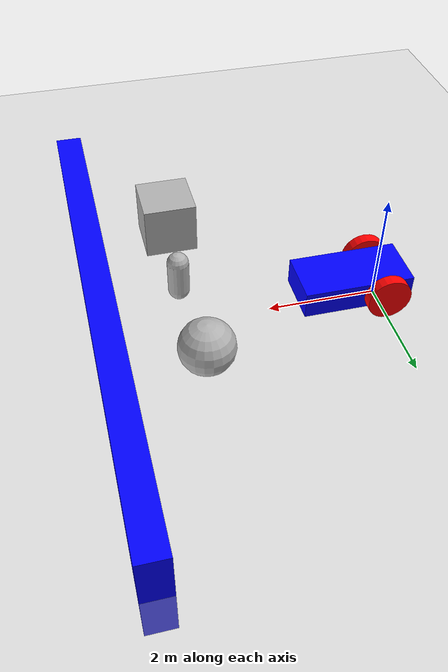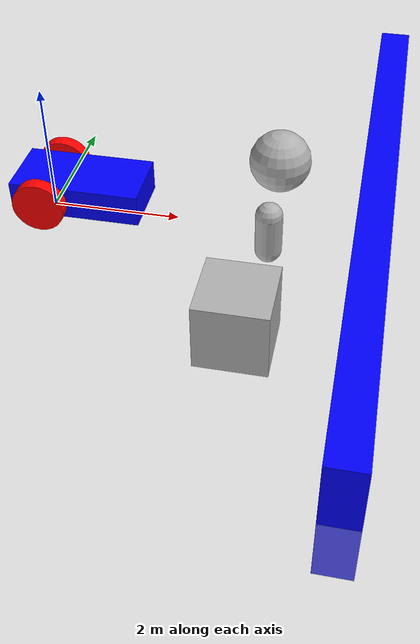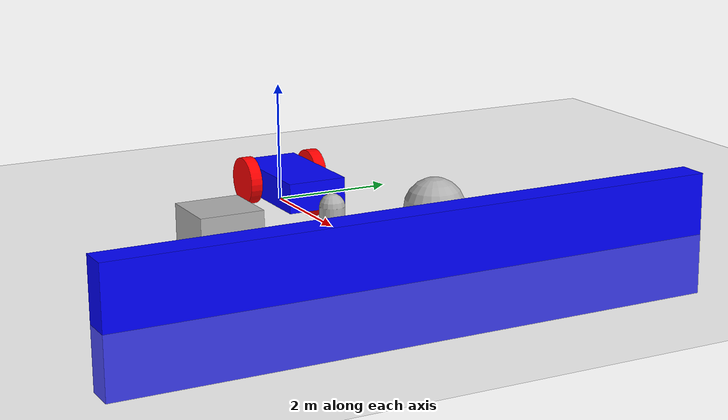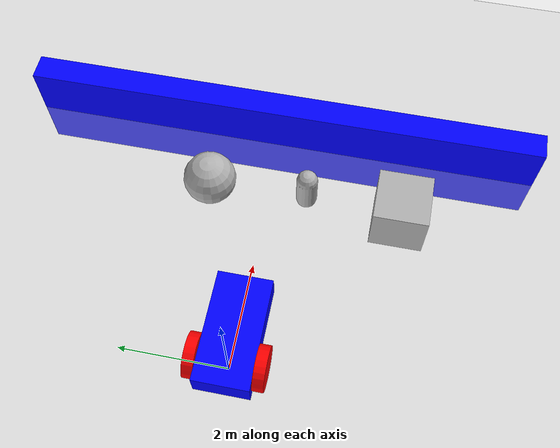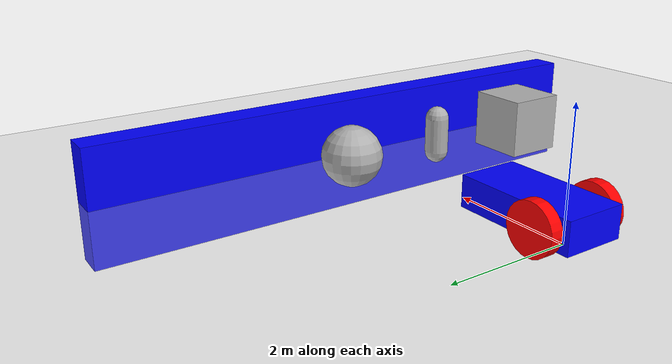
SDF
<sdf version='1.9'>
  <world name='car_world'>
    <physics name='1ms' type='ignored'>
      <max_step_size>0.001</max_step_size>
      <real_time_factor>1</real_time_factor>
      <real_time_update_rate>1000</real_time_update_rate>
    </physics>
    <plugin name='ignition::gazebo::systems::Physics' filename='libignition-gazebo-physics-system.so'/>
    <plugin name='ignition::gazebo::systems::Imu' filename='libignition-gazebo-imu-system.so'/>
    <plugin name='ignition::gazebo::systems::UserCommands' filename='libignition-gazebo-user-commands-system.so'/>
    <plugin name='ignition::gazebo::systems::SceneBroadcaster' filename='libignition-gazebo-scene-broadcaster-system.so'/>
    <plugin name='ignition::gazebo::systems::Sensors' filename='libignition-gazebo-sensors-system.so'>
      <render_engine>ogre2</render_engine>
    </plugin>
    <plugin name='ignition::gazebo::systems::TriggeredPublisher' filename='libignition-gazebo-triggered-publisher-system.so'>
      <input type='ignition.msgs.Int32' topic='/keyboard/keypress'>
        <match field='data'>16777235</match>
      </input>
      <output type='ignition.msgs.Twist' topic='/cmd_vel'>linear: {x: 0.5}, angular: {z: 0.0}</output>
    </plugin>
    <plugin name='ignition::gazebo::systems::TriggeredPublisher' filename='libignition-gazebo-triggered-publisher-system.so'>
      <input type='ignition.msgs.Int32' topic='/keyboard/keypress'>
        <match field='data'>16777237</match>
      </input>
      <output type='ignition.msgs.Twist' topic='/cmd_vel'>linear: {x: -0.5}, angular: {z: 0.0}</output>
    </plugin>
    <plugin name='ignition::gazebo::systems::TriggeredPublisher' filename='libignition-gazebo-triggered-publisher-system.so'>
      <input type='ignition.msgs.Int32' topic='/keyboard/keypress'>
        <match field='data'>16777234</match>
      </input>
      <output type='ignition.msgs.Twist' topic='/cmd_vel'>linear: {x: 0}, angular: {z: 0.5}</output>
    </plugin>
    <plugin name='ignition::gazebo::systems::TriggeredPublisher' filename='libignition-gazebo-triggered-publisher-system.so'>
      <input type='ignition.msgs.Int32' topic='/keyboard/keypress'>
        <match field='data'>16777236</match>
      </input>
      <output type='ignition.msgs.Twist' topic='/cmd_vel'>linear: {x: 0}, angular: {z: -0.5}</output>
    </plugin>
    <gravity>0 0 -9.8</gravity>
    <magnetic_field>6e-06 2.3e-05 -4.2e-05</magnetic_field>
    <atmosphere type='adiabatic'/>
    <scene>
      <ambient>0.4 0.4 0.4 1</ambient>
      <background>0.7 0.7 0.7 1</background>
      <shadows>true</shadows>
    </scene>
    <model name='ground_plane'>
      <static>true</static>
      <link name='link'>
        <collision name='collision'>
          <geometry>
            <plane>
              <normal>0 0 1</normal>
              <size>1 1</size>
            </plane>
          </geometry>
          <surface>
            <friction>
              <ode/>
            </friction>
            <bounce/>
            <contact/>
          </surface>
        </collision>
        <visual name='visual'>
          <geometry>
            <plane>
              <normal>0 0 1</normal>
              <size>100 100</size>
            </plane>
          </geometry>
          <material>
            <ambient>0.8 0.8 0.8 1</ambient>
            <diffuse>0.8 0.8 0.8 1</diffuse>
            <specular>0.8 0.8 0.8 1</specular>
          </material>
        </visual>
        <pose>0 0 0 0 -0 0</pose>
        <inertial>
          <pose>0 0 0 0 -0 0</pose>
          <mass>1</mass>
          <inertia>
            <ixx>1</ixx>
            <ixy>0</ixy>
            <ixz>0</ixz>
            <iyy>1</iyy>
            <iyz>0</iyz>
            <izz>1</izz>
          </inertia>
        </inertial>
        <enable_wind>false</enable_wind>
      </link>
      <pose>0 0 0 0 -0 0</pose>
      <self_collide>false</self_collide>
    </model>
    <model name='wall'>
      <static>true</static>
      <pose>5 0 0 0 -0 0</pose>
      <link name='box'>
        <pose>0 0 0 0 -0 0</pose>
        <visual name='visual'>
          <geometry>
            <box>
              <size>0.5 10 2</size>
            </box>
          </geometry>
          <material>
            <ambient>0 0 1 1</ambient>
            <diffuse>0 0 1 1</diffuse>
            <specular>0 0 1 1</specular>
          </material>
        </visual>
        <collision name='collision'>
          <geometry>
            <box>
              <size>0.5 10 2</size>
            </box>
          </geometry>
          <surface>
            <friction>
              <ode/>
            </friction>
            <bounce/>
            <contact/>
          </surface>
        </collision>
        <sensor name='sensor_contact' type='contact'>
          <contact>
            <collision>collision</collision>
            <topic>__default_topic__</topic>
          </contact>
        </sensor>
        <inertial>
          <pose>0 0 0 0 -0 0</pose>
          <mass>1</mass>
          <inertia>
            <ixx>1</ixx>
            <ixy>0</ixy>
            <ixz>0</ixz>
            <iyy>1</iyy>
            <iyz>0</iyz>
            <izz>1</izz>
          </inertia>
        </inertial>
        <enable_wind>false</enable_wind>
      </link>
      <self_collide>false</self_collide>
    </model>
    <model name='vehicle_blue' canonical_link='chassis'>
      <pose>0 0 0 0 -0 0</pose>
      <link name='chassis'>
        <pose>0.5 0 0.4 0 -0 0</pose>
        <inertial>
          <mass>1.14395</mass>
          <inertia>
            <ixx>0.095328999999999997</ixx>
            <ixy>0</ixy>
            <ixz>0</ixz>
            <iyy>0.38131700000000002</iyy>
            <iyz>0</iyz>
            <izz>0.47664600000000001</izz>
          </inertia>
          <pose>0 0 0 0 -0 0</pose>
        </inertial>
        <visual name='visual'>
          <geometry>
            <box>
              <size>2 1 0.5</size>
            </box>
          </geometry>
          <material>
            <ambient>0 0 1 1</ambient>
            <diffuse>0 0 1 1</diffuse>
            <specular>0 0 1 1</specular>
          </material>
        </visual>
        <collision name='collision'>
          <geometry>
            <box>
              <size>2 1 0.5</size>
            </box>
          </geometry>
          <surface>
            <friction>
              <ode/>
            </friction>
            <bounce/>
            <contact/>
          </surface>
        </collision>
        <sensor name='imu_sensor' type='imu'>
          <pose>0 0 0 0 -0 0</pose>
          <topic>imu</topic>
          <update_rate>1</update_rate>
          <enable_metrics>false</enable_metrics>
          <imu>
            <orientation_reference_frame>
              <localization>CUSTOM</localization>
              <custom_rpy>0 0 0</custom_rpy>
              <grav_dir_x>1 0 0</grav_dir_x>
            </orientation_reference_frame>
            <angular_velocity>
              <x>
                <noise type='none'>
                  <mean>0</mean>
                  <stddev>0</stddev>
                  <bias_mean>0</bias_mean>
                  <bias_stddev>0</bias_stddev>
                  <dynamic_bias_stddev>0</dynamic_bias_stddev>
                  <dynamic_bias_correlation_time>0</dynamic_bias_correlation_time>
                  <precision>0</precision>
                </noise>
              </x>
              <y>
                <noise type='none'>
                  <mean>0</mean>
                  <stddev>0</stddev>
                  <bias_mean>0</bias_mean>
                  <bias_stddev>0</bias_stddev>
                  <dynamic_bias_stddev>0</dynamic_bias_stddev>
                  <dynamic_bias_correlation_time>0</dynamic_bias_correlation_time>
                  <precision>0</precision>
                </noise>
              </y>
              <z>
                <noise type='none'>
                  <mean>0</mean>
                  <stddev>0</stddev>
                  <bias_mean>0</bias_mean>
                  <bias_stddev>0</bias_stddev>
                  <dynamic_bias_stddev>0</dynamic_bias_stddev>
                  <dynamic_bias_correlation_time>0</dynamic_bias_correlation_time>
                  <precision>0</precision>
                </noise>
              </z>
            </angular_velocity>
            <linear_acceleration>
              <x>
                <noise type='none'>
                  <mean>0</mean>
                  <stddev>0</stddev>
                  <bias_mean>0</bias_mean>
                  <bias_stddev>0</bias_stddev>
                  <dynamic_bias_stddev>0</dynamic_bias_stddev>
                  <dynamic_bias_correlation_time>0</dynamic_bias_correlation_time>
                  <precision>0</precision>
                </noise>
              </x>
              <y>
                <noise type='none'>
                  <mean>0</mean>
                  <stddev>0</stddev>
                  <bias_mean>0</bias_mean>
                  <bias_stddev>0</bias_stddev>
                  <dynamic_bias_stddev>0</dynamic_bias_stddev>
                  <dynamic_bias_correlation_time>0</dynamic_bias_correlation_time>
                  <precision>0</precision>
                </noise>
              </y>
              <z>
                <noise type='none'>
                  <mean>0</mean>
                  <stddev>0</stddev>
                  <bias_mean>0</bias_mean>
                  <bias_stddev>0</bias_stddev>
                  <dynamic_bias_stddev>0</dynamic_bias_stddev>
                  <dynamic_bias_correlation_time>0</dynamic_bias_correlation_time>
                  <precision>0</precision>
                </noise>
              </z>
            </linear_acceleration>
            <enable_orientation>true</enable_orientation>
          </imu>
        </sensor>
        <sensor name='gpu_lidar' type='gpu_lidar'>
          <pose>0 0 0 0 -0 0</pose>
          <topic>lidar</topic>
          <update_rate>10</update_rate>
          <enable_metrics>false</enable_metrics>
          <lidar>
            <scan>
              <horizontal>
                <samples>300</samples>
                <resolution>1</resolution>
                <min_angle>-1.5700000000000001</min_angle>
                <max_angle>1.5700000000000001</max_angle>
              </horizontal>
              <vertical>
                <samples>1</samples>
                <min_angle>0.10000000000000001</min_angle>
                <max_angle>0.10000000000000001</max_angle>
                <resolution>0.01</resolution>
              </vertical>
            </scan>
            <range>
              <min>0.080000000000000002</min>
              <max>30</max>
              <resolution>0.01</resolution>
            </range>
            <noise>
              <type>none</type>
              <mean>0</mean>
              <stddev>0</stddev>
            </noise>
            <visibility_mask>4294967295</visibility_mask>
          </lidar>
        </sensor>
        <sensor name='left_camera' type='camera'>
          <pose>0 0.5 0.5 0 -0 0</pose>
          <topic>camera_l</topic>
          <update_rate>30</update_rate>
          <enable_metrics>false</enable_metrics>
          <camera name='__default__'>
            <pose>0 0 0 0 -0 0</pose>
            <horizontal_fov>1.0469999999999999</horizontal_fov>
            <image>
              <width>1280</width>
              <height>720</height>
              <format>RGB_INT8</format>
              <anti_aliasing>4</anti_aliasing>
            </image>
            <camera_info_topic>__default__</camera_info_topic>
            <trigger_topic></trigger_topic>
            <triggered>false</triggered>
            <clip>
              <near>0.10000000000000001</near>
              <far>100</far>
            </clip>
            <save enabled='false'>
              <path>__default__</path>
            </save>
            <visibility_mask>4294967295</visibility_mask>
            <noise>
              <type>none</type>
              <mean>0</mean>
              <stddev>0</stddev>
            </noise>
            <distortion>
              <k1>0</k1>
              <k2>0</k2>
              <k3>0</k3>
              <p1>0</p1>
              <p2>0</p2>
              <center>0.5 0.5</center>
            </distortion>
            <lens>
              <type>stereographic</type>
              <scale_to_hfov>true</scale_to_hfov>
              <cutoff_angle>1.5708</cutoff_angle>
              <env_texture_size>256</env_texture_size>
            </lens>
            <optical_frame_id></optical_frame_id>
          </camera>
        </sensor>
        <sensor name='right_camera' type='camera'>
          <pose>0 -0.5 0.5 0 -0 0</pose>
          <topic>camera_r</topic>
          <update_rate>30</update_rate>
          <enable_metrics>false</enable_metrics>
          <camera name='__default__'>
            <pose>0 0 0 0 -0 0</pose>
            <horizontal_fov>1.0469999999999999</horizontal_fov>
            <image>
              <width>1280</width>
              <height>720</height>
              <format>RGB_INT8</format>
              <anti_aliasing>4</anti_aliasing>
            </image>
            <camera_info_topic>__default__</camera_info_topic>
            <trigger_topic></trigger_topic>
            <triggered>false</triggered>
            <clip>
              <near>0.10000000000000001</near>
              <far>100</far>
            </clip>
            <save enabled='false'>
              <path>__default__</path>
            </save>
            <visibility_mask>4294967295</visibility_mask>
            <noise>
              <type>none</type>
              <mean>0</mean>
              <stddev>0</stddev>
            </noise>
            <distortion>
              <k1>0</k1>
              <k2>0</k2>
              <k3>0</k3>
              <p1>0</p1>
              <p2>0</p2>
              <center>0.5 0.5</center>
            </distortion>
            <lens>
              <type>stereographic</type>
              <scale_to_hfov>true</scale_to_hfov>
              <cutoff_angle>1.5708</cutoff_angle>
              <env_texture_size>256</env_texture_size>
            </lens>
            <optical_frame_id></optical_frame_id>
          </camera>
        </sensor>
        <frame name='lidar_frame' attached_to='chassis'>
          <pose>0.8 0 0.5 0 0 0</pose>
        </frame>
        <frame name='camera_frame' attached_to='chassis'>
          <pose>2 0 1 0 0 0</pose>
        </frame>
        <enable_wind>false</enable_wind>
      </link>
      <link name='left_wheel'>
        <pose>0 0.6 0.4 -1.5707 0 0</pose>
        <inertial>
          <mass>1</mass>
          <inertia>
            <ixx>0.043333000000000003</ixx>
            <ixy>0</ixy>
            <ixz>0</ixz>
            <iyy>0.043333000000000003</iyy>
            <iyz>0</iyz>
            <izz>0.080000000000000002</izz>
          </inertia>
          <pose>0 0 0 0 -0 0</pose>
        </inertial>
        <visual name='visual'>
          <geometry>
            <cylinder>
              <radius>0.40000000000000002</radius>
              <length>0.20000000000000001</length>
            </cylinder>
          </geometry>
          <material>
            <ambient>1 0 0 1</ambient>
            <diffuse>1 0 0 1</diffuse>
            <specular>1 0 0 1</specular>
          </material>
        </visual>
        <collision name='collision'>
          <geometry>
            <cylinder>
              <radius>0.40000000000000002</radius>
              <length>0.20000000000000001</length>
            </cylinder>
          </geometry>
          <surface>
            <friction>
              <ode/>
            </friction>
            <bounce/>
            <contact/>
          </surface>
        </collision>
        <enable_wind>false</enable_wind>
      </link>
      <link name='right_wheel'>
        <pose>0 -0.6 0.4 -1.5707 0 0</pose>
        <inertial>
          <mass>1</mass>
          <inertia>
            <ixx>0.043333000000000003</ixx>
            <ixy>0</ixy>
            <ixz>0</ixz>
            <iyy>0.043333000000000003</iyy>
            <iyz>0</iyz>
            <izz>0.080000000000000002</izz>
          </inertia>
          <pose>0 0 0 0 -0 0</pose>
        </inertial>
        <visual name='visual'>
          <geometry>
            <cylinder>
              <radius>0.40000000000000002</radius>
              <length>0.20000000000000001</length>
            </cylinder>
          </geometry>
          <material>
            <ambient>1 0 0 1</ambient>
            <diffuse>1 0 0 1</diffuse>
            <specular>1 0 0 1</specular>
          </material>
        </visual>
        <collision name='collision'>
          <geometry>
            <cylinder>
              <radius>0.40000000000000002</radius>
              <length>0.20000000000000001</length>
            </cylinder>
          </geometry>
          <surface>
            <friction>
              <ode/>
            </friction>
            <bounce/>
            <contact/>
          </surface>
        </collision>
        <enable_wind>false</enable_wind>
      </link>
      <frame name='caster_frame' attached_to='chassis'>
        <pose>0.8 0 -0.2 0 0 0</pose>
      </frame>
      <link name='caster'>
        <pose>1.3 0 0.2 0 -0 0</pose>
        <inertial>
          <mass>1</mass>
          <inertia>
            <ixx>0.016</ixx>
            <ixy>0</ixy>
            <ixz>0</ixz>
            <iyy>0.016</iyy>
            <iyz>0</iyz>
            <izz>0.016</izz>
          </inertia>
          <pose>0 0 0 0 -0 0</pose>
        </inertial>
        <visual name='visual'>
          <geometry>
            <sphere>
              <radius>0.20000000000000001</radius>
            </sphere>
          </geometry>
          <material>
            <ambient>0.5 1 0.5 1</ambient>
            <diffuse>1 0 0 1</diffuse>
            <specular>1 1 0 1</specular>
          </material>
        </visual>
        <collision name='collision'>
          <geometry>
            <sphere>
              <radius>0.20000000000000001</radius>
            </sphere>
          </geometry>
          <surface>
            <friction>
              <ode/>
            </friction>
            <bounce/>
            <contact/>
          </surface>
        </collision>
        <enable_wind>false</enable_wind>
      </link>
      <joint name='left_wheel_joint' type='revolute'>
        <pose>0 0 0 0 -0 0</pose>
        <parent>chassis</parent>
        <child>left_wheel</child>
        <axis>
          <xyz>0 9.6e-05 1</xyz>
          <limit>
            <lower>-1.7976900000000001e+308</lower>
            <upper>1.7976900000000001e+308</upper>
            <effort>inf</effort>
            <velocity>inf</velocity>
            <stiffness>100000000</stiffness>
            <dissipation>1</dissipation>
          </limit>
          <dynamics>
            <spring_reference>0</spring_reference>
            <spring_stiffness>0</spring_stiffness>
            <damping>0</damping>
            <friction>0</friction>
          </dynamics>
        </axis>
      </joint>
      <joint name='right_wheel_joint' type='revolute'>
        <pose>0 0 0 0 -0 0</pose>
        <parent>chassis</parent>
        <child>right_wheel</child>
        <axis>
          <xyz>0 9.6e-05 1</xyz>
          <limit>
            <lower>-1.7976900000000001e+308</lower>
            <upper>1.7976900000000001e+308</upper>
            <effort>inf</effort>
            <velocity>inf</velocity>
            <stiffness>100000000</stiffness>
            <dissipation>1</dissipation>
          </limit>
          <dynamics>
            <spring_reference>0</spring_reference>
            <spring_stiffness>0</spring_stiffness>
            <damping>0</damping>
            <friction>0</friction>
          </dynamics>
        </axis>
      </joint>
      <joint name='caster_wheel' type='ball'>
        <parent>chassis</parent>
        <child>caster</child>
        <pose>0 0 0 0 -0 0</pose>
      </joint>
      <plugin name='ignition::gazebo::systems::DiffDrive' filename='libignition-gazebo-diff-drive-system.so'>
        <left_joint>left_wheel_joint</left_joint>
        <right_joint>right_wheel_joint</right_joint>
        <wheel_separation>1.2</wheel_separation>
        <wheel_radius>0.4</wheel_radius>
        <odom_publish_frequency>10</odom_publish_frequency>
        <topic>cmd_vel</topic>
      </plugin>
      <static>false</static>
      <self_collide>false</self_collide>
    </model>
    <model name='sphere'>
      <pose>3.42422 1.12861 0.5 0 -0 0</pose>
      <link name='sphere_link'>
        <inertial>
          <inertia>
            <ixx>0.10000000000000001</ixx>
            <ixy>0</ixy>
            <ixz>0</ixz>
            <iyy>0.10000000000000001</iyy>
            <iyz>0</iyz>
            <izz>0.10000000000000001</izz>
          </inertia>
          <mass>1</mass>
          <pose>0 0 0 0 -0 0</pose>
        </inertial>
        <collision name='sphere_collision'>
          <geometry>
            <sphere>
              <radius>0.5</radius>
            </sphere>
          </geometry>
          <surface>
            <friction>
              <ode/>
            </friction>
            <bounce/>
            <contact/>
          </surface>
        </collision>
        <visual name='sphere_visual'>
          <geometry>
            <sphere>
              <radius>0.5</radius>
            </sphere>
          </geometry>
          <material>
            <ambient>0.3 0.3 0.3 1</ambient>
            <diffuse>0.7 0.7 0.7 1</diffuse>
            <specular>1 1 1 1</specular>
          </material>
        </visual>
        <pose>0 0 0 0 -0 0</pose>
        <enable_wind>false</enable_wind>
      </link>
      <static>false</static>
      <self_collide>false</self_collide>
    </model>
    <model name='capsule'>
      <pose>3.52905 -0.721752 0.5 0 -0 0</pose>
      <link name='capsule_link'>
        <inertial>
          <inertia>
            <ixx>0.074153999999999998</ixx>
            <ixy>0</ixy>
            <ixz>0</ixz>
            <iyy>0.074153999999999998</iyy>
            <iyz>0</iyz>
            <izz>0.018769000000000001</izz>
          </inertia>
          <mass>1</mass>
          <pose>0 0 0 0 -0 0</pose>
        </inertial>
        <collision name='capsule_collision'>
          <geometry>
            <capsule>
              <radius>0.20000000000000001</radius>
              <length>0.59999999999999998</length>
            </capsule>
          </geometry>
          <surface>
            <friction>
              <ode/>
            </friction>
            <bounce/>
            <contact/>
          </surface>
        </collision>
        <visual name='capsule_visual'>
          <geometry>
            <capsule>
              <radius>0.20000000000000001</radius>
              <length>0.59999999999999998</length>
            </capsule>
          </geometry>
          <material>
            <ambient>0.3 0.3 0.3 1</ambient>
            <diffuse>0.7 0.7 0.7 1</diffuse>
            <specular>1 1 1 1</specular>
          </material>
        </visual>
        <pose>0 0 0 0 -0 0</pose>
        <enable_wind>false</enable_wind>
      </link>
      <static>false</static>
      <self_collide>false</self_collide>
    </model>
    <model name='box'>
      <pose>3.404 -2.5141 0.5 0 -0 0</pose>
      <link name='box_link'>
        <inertial>
          <inertia>
            <ixx>0.16666</ixx>
            <ixy>0</ixy>
            <ixz>0</ixz>
            <iyy>0.16666</iyy>
            <iyz>0</iyz>
            <izz>0.16666</izz>
          </inertia>
          <mass>1</mass>
          <pose>0 0 0 0 -0 0</pose>
        </inertial>
        <collision name='box_collision'>
          <geometry>
            <box>
              <size>1 1 1</size>
            </box>
          </geometry>
          <surface>
            <friction>
              <ode/>
            </friction>
            <bounce/>
            <contact/>
          </surface>
        </collision>
        <visual name='box_visual'>
          <geometry>
            <box>
              <size>1 1 1</size>
            </box>
          </geometry>
          <material>
            <ambient>0.3 0.3 0.3 1</ambient>
            <diffuse>0.7 0.7 0.7 1</diffuse>
            <specular>1 1 1 1</specular>
          </material>
        </visual>
        <pose>0 0 0 0 -0 0</pose>
        <enable_wind>false</enable_wind>
      </link>
      <static>false</static>
      <self_collide>false</self_collide>
    </model>
    <light name='sun' type='directional'>
      <pose>0 0 10 0 -0 0</pose>
      <cast_shadows>true</cast_shadows>
      <intensity>1</intensity>
      <direction>-0.5 0.1 -0.9</direction>
      <diffuse>0.8 0.8 0.8 1</diffuse>
      <specular>0.2 0.2 0.2 1</specular>
      <attenuation>
        <range>1000</range>
        <linear>0.01</linear>
        <constant>0.90000000000000002</constant>
        <quadratic>0.001</quadratic>
      </attenuation>
      <spot>
        <inner_angle>0</inner_angle>
        <outer_angle>0</outer_angle>
        <falloff>0</falloff>
      </spot>
    </light>
  </world>
</sdf>
